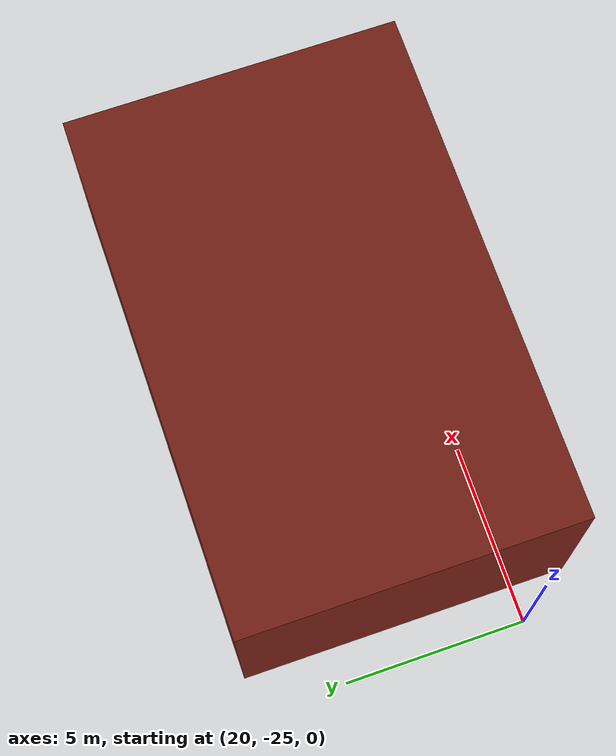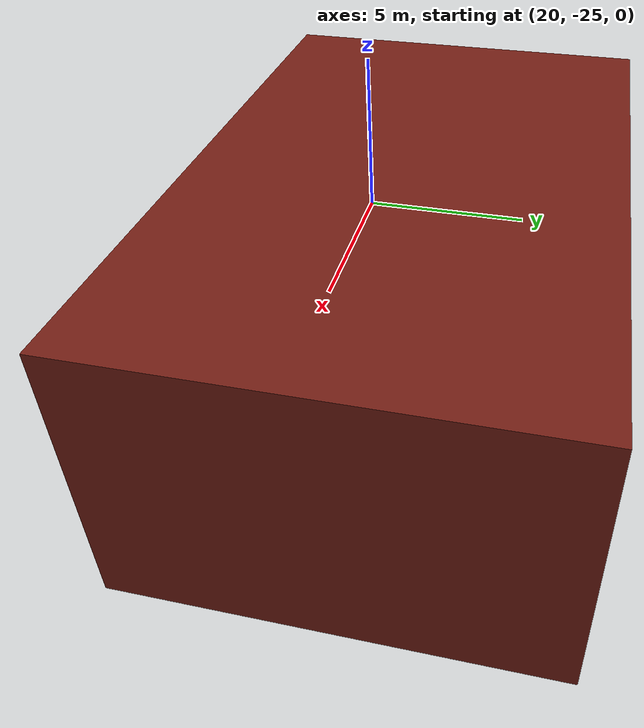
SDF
<sdf version="1.9">
 <world name="flat_rural_phototex_600m_noon_wind5ms">
  <model name="barn_low">
   <static>true</static>
   <pose>28 -22 3 0 0 0</pose>
   <link name="link">
    <collision name="collision"><geometry><box><size>14 9 6</size></box></geometry></collision>
    <visual name="visual">
     <geometry><box><size>14 9 6</size></box></geometry>
     <material>
      <ambient>0.450 0.120 0.080 1.000</ambient>
      <diffuse>0.450 0.120 0.080 1.000</diffuse>
      <specular>0.05 0.05 0.05 1</specular>
     </material>
    </visual>
   </link>
  </model>
 </world>
</sdf>
